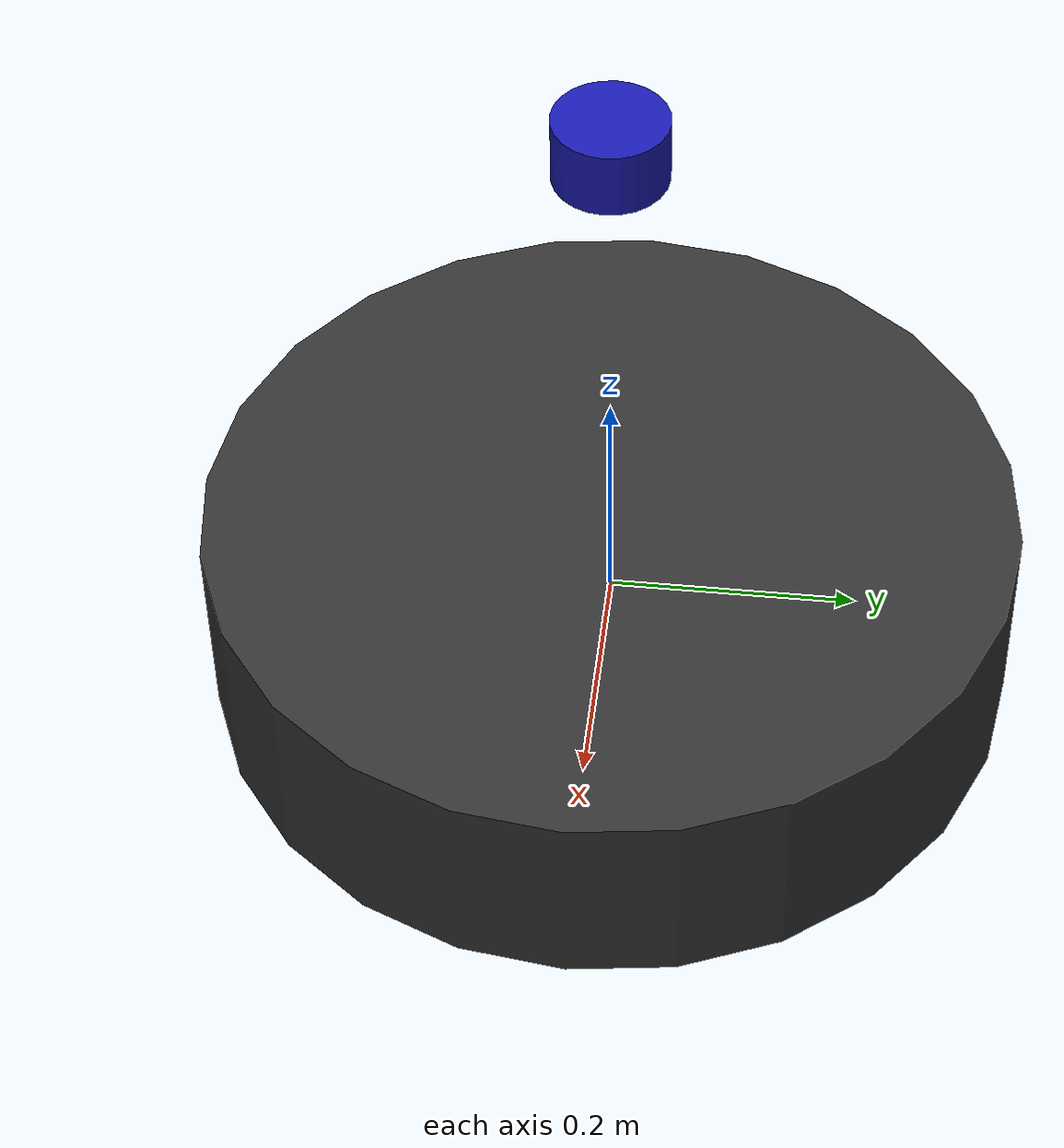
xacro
<?xml version="1.0"?>
<robot xmlns:xacro="http://www.ros.org/wiki/xacro" name="guard_robot">

  <xacro:property name="chassis_radius" value="0.330"/>
  <xacro:property name="chassis_height" value="0.17"/>
  <xacro:property name="chassis_mass" value="8.0"/>

  <xacro:property name="lidar_radius" value="0.044"/>
  <xacro:property name="lidar_height" value="0.052"/>
  <xacro:property name="lidar_mass" value="0.265"/>

  <xacro:property name="base_link_z" value="0.085"/>
  <xacro:property name="lidar_z_rel" value="0.46"/>
  <xacro:property name="lidar_z_world" value="${base_link_z + lidar_z_rel}"/>

  <xacro:macro name="cylinder_inertia" params="m r h">
    <inertia ixx="${m*(3*r*r+h*h)/12}" ixy="0" ixz="0"
             iyy="${m*(3*r*r+h*h)/12}" iyz="0"
             izz="${m*r*r/2}"/>
  </xacro:macro>

  <link name="base_footprint"/>
  <joint name="base_footprint_joint" type="fixed">
    <parent link="base_link"/>
    <child link="base_footprint"/>
    <origin xyz="0 0 -0.085" rpy="0 0 0"/>
  </joint>

  <link name="base_link">
    <visual>
      <origin xyz="0 0 0" rpy="0 0 0"/>
      <geometry><cylinder radius="${chassis_radius}" length="${chassis_height}"/></geometry>
      <material name="dark_grey"><color rgba="0.2 0.2 0.2 1.0"/></material>
    </visual>
    <collision>
      <origin xyz="0 0 0" rpy="0 0 0"/>
      <geometry><cylinder radius="${chassis_radius}" length="${chassis_height}"/></geometry>
    </collision>
    <inertial>
      <origin xyz="0 0 0" rpy="0 0 0"/>
      <mass value="${chassis_mass}"/>
      <xacro:cylinder_inertia m="${chassis_mass}" r="${chassis_radius}" h="${chassis_height}"/>
    </inertial>
  </link>

  <joint name="lidar_joint" type="fixed">
    <parent link="base_link"/>
    <child link="lidar_link"/>
    <origin xyz="0 0 0.46" rpy="3.1415926535 0 0"/>
  </joint>

  <link name="lidar_link">
    <visual>
      <geometry><cylinder radius="${lidar_radius}" length="${lidar_height}"/></geometry>
      <material name="lidar_blue"><color rgba="0.1 0.1 0.7 1.0"/></material>
    </visual>
    <collision>
      <geometry><cylinder radius="${lidar_radius}" length="${lidar_height}"/></geometry>
    </collision>
    <inertial>
      <mass value="${lidar_mass}"/>
      <xacro:cylinder_inertia m="${lidar_mass}" r="${lidar_radius}" h="${lidar_height}"/>
    </inertial>
  </link>

  <link name="imu_link">
    <visual>
      <geometry><box size="0.02 0.02 0.01"/></geometry>
      <material name="green"><color rgba="0.2 0.8 0.2 1.0"/></material>
    </visual>
    <collision>
      <geometry><box size="0.02 0.02 0.01"/></geometry>
    </collision>
    <inertial>
      <mass value="0.01"/>
      <inertia ixx="0.000001" ixy="0" ixz="0" iyy="0.000001" iyz="0" izz="0.000001"/>
    </inertial>
  </link>

  <joint name="imu_joint" type="fixed">
    <parent link="lidar_link"/>
    <child link="imu_link"/>
    <origin xyz="-0.011 -0.02329 0.04412" rpy="0 0 0"/>
  </joint>

  <gazebo reference="lidar_link">
    <sensor name="mid360_lidar" type="gpu_lidar">
      <pose>0 0 0 0 0 0</pose>
      <topic>/guard/points</topic>
      <update_rate>10</update_rate>
      <always_on>true</always_on>
      <visualize>true</visualize>
      <ray>
        <scan>
          <horizontal>
            <samples>360</samples>
            <resolution>1</resolution>
            <min_angle>-3.14159265359</min_angle>
            <max_angle>3.14159265359</max_angle>
          </horizontal>
          <vertical>
            <samples>16</samples>
            <resolution>1</resolution>
            <min_angle>-0.122173</min_angle>
            <max_angle>0.907571</max_angle>
          </vertical>
        </scan>
        <range>
          <min>0.1</min>
          <max>40.0</max>
          <resolution>0.01</resolution>
        </range>
        <noise>
          <type>gaussian</type>
          <mean>0.0</mean>
          <stddev>0.005</stddev>
        </noise>
      </ray>
      <gz_frame_id>lidar_link</gz_frame_id>
    </sensor>
  </gazebo>

  <gazebo reference="imu_link">
    <sensor name="imu_sensor" type="imu">
      <topic>/guard/imu</topic>
      <update_rate>200</update_rate>
      <always_on>true</always_on>
      <visualize>false</visualize>
      <imu>
        <angular_velocity>
          <x><noise type="gaussian"><mean>0</mean><stddev>0.0001</stddev></noise></x>
          <y><noise type="gaussian"><mean>0</mean><stddev>0.0001</stddev></noise></y>
          <z><noise type="gaussian"><mean>0</mean><stddev>0.0001</stddev></noise></z>
        </angular_velocity>
        <linear_acceleration>
          <x><noise type="gaussian"><mean>0</mean><stddev>0.0001</stddev></noise></x>
          <y><noise type="gaussian"><mean>0</mean><stddev>0.0001</stddev></noise></y>
          <z><noise type="gaussian"><mean>0</mean><stddev>0.0001</stddev></noise></z>
        </linear_acceleration>
      </imu>
    </sensor>
  </gazebo>

</robot>
